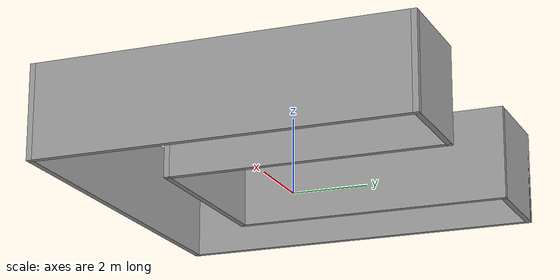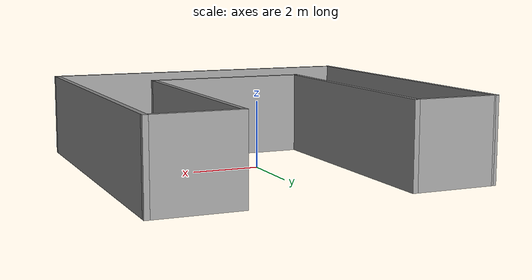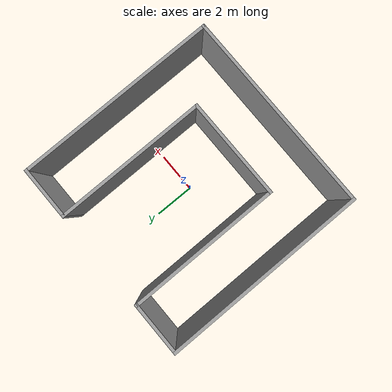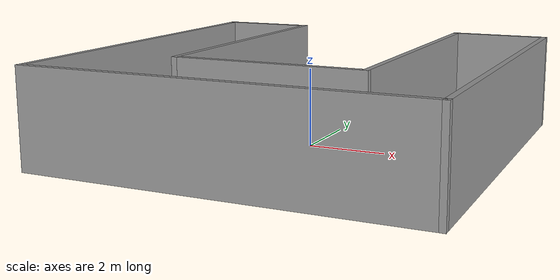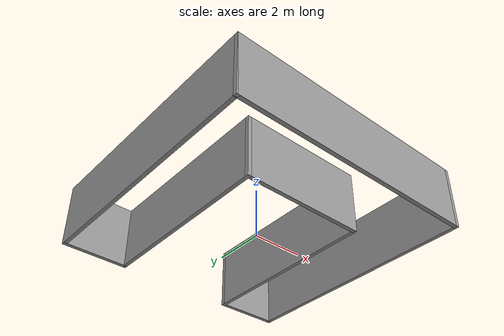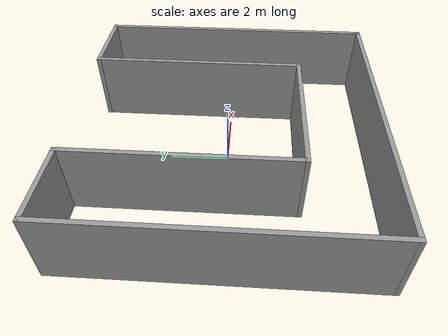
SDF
<?xml version='1.0'?>
<sdf version='1.6'>
  <model name='test_building'>
    <link name='Wall_0'>
      <pose frame=''>-4.92492 -0.009003 0 0 0 -1.57076</pose>
      <self_collide>0</self_collide>
      <kinematic>0</kinematic>
      <visual name='Wall_0_Visual'>
        <pose frame=''>0 0 1.25 0 -0 0</pose>
        <geometry>
          <box>
            <size>9.98209 0.15 2.5</size>
          </box>
        </geometry>
        <material>
          <script>
            <uri>file://media/materials/scripts/gazebo.material</uri>
            <name>Gazebo/Grey</name>
          </script>
          <ambient>1 1 1 1</ambient>
          <diffuse>0.7 0.7 0.7 1</diffuse>
          <specular>0.01 0.01 0.01 1</specular>
          <emissive>0 0 0 1</emissive>
        </material>
        <cast_shadows>1</cast_shadows>
        <transparency>0</transparency>
      </visual>
      <collision name='Wall_0_Collision'>
        <laser_retro>0</laser_retro>
        <max_contacts>10</max_contacts>
        <pose frame=''>0 0 1.25 0 -0 0</pose>
        <geometry>
          <box>
            <size>9.98209 0.15 2.5</size>
          </box>
        </geometry>
        <surface>
          <friction>
            <ode>
              <mu>1</mu>
              <mu2>1</mu2>
              <fdir1>0 0 0</fdir1>
              <slip1>0</slip1>
              <slip2>0</slip2>
            </ode>
            <torsional>
              <coefficient>1</coefficient>
              <patch_radius>0</patch_radius>
              <surface_radius>0</surface_radius>
              <use_patch_radius>1</use_patch_radius>
              <ode>
                <slip>0</slip>
              </ode>
            </torsional>
          </friction>
          <bounce>
            <restitution_coefficient>0</restitution_coefficient>
            <threshold>1e+06</threshold>
          </bounce>
          <contact>
            <collide_without_contact>0</collide_without_contact>
            <collide_without_contact_bitmask>1</collide_without_contact_bitmask>
            <collide_bitmask>1</collide_bitmask>
            <ode>
              <soft_cfm>0</soft_cfm>
              <soft_erp>0.2</soft_erp>
              <kp>1e+13</kp>
              <kd>1</kd>
              <max_vel>0.01</max_vel>
              <min_depth>0</min_depth>
            </ode>
            <bullet>
              <split_impulse>1</split_impulse>
              <split_impulse_penetration_threshold>-0.01</split_impulse_penetration_threshold>
              <soft_cfm>0</soft_cfm>
              <soft_erp>0.2</soft_erp>
              <kp>1e+13</kp>
              <kd>1</kd>
            </bullet>
          </contact>
        </surface>
      </collision>
    </link>
    <link name='Wall_1'>
      <pose frame=''>8.4e-05 -4.925 0 0 -0 1e-05</pose>
      <self_collide>0</self_collide>
      <kinematic>0</kinematic>
      <visual name='Wall_1_Visual'>
        <pose frame=''>0 0 1.25 0 -0 0</pose>
        <geometry>
          <box>
            <size>10 0.15 2.5</size>
          </box>
        </geometry>
        <material>
          <script>
            <uri>file://media/materials/scripts/gazebo.material</uri>
            <name>Gazebo/Grey</name>
          </script>
          <ambient>1 1 1 1</ambient>
          <diffuse>0.7 0.7 0.7 1</diffuse>
          <specular>0.01 0.01 0.01 1</specular>
          <emissive>0 0 0 1</emissive>
        </material>
        <cast_shadows>1</cast_shadows>
        <transparency>0</transparency>
      </visual>
      <collision name='Wall_1_Collision'>
        <laser_retro>0</laser_retro>
        <max_contacts>10</max_contacts>
        <pose frame=''>0 0 1.25 0 -0 0</pose>
        <geometry>
          <box>
            <size>10 0.15 2.5</size>
          </box>
        </geometry>
        <surface>
          <friction>
            <ode>
              <mu>1</mu>
              <mu2>1</mu2>
              <fdir1>0 0 0</fdir1>
              <slip1>0</slip1>
              <slip2>0</slip2>
            </ode>
            <torsional>
              <coefficient>1</coefficient>
              <patch_radius>0</patch_radius>
              <surface_radius>0</surface_radius>
              <use_patch_radius>1</use_patch_radius>
              <ode>
                <slip>0</slip>
              </ode>
            </torsional>
          </friction>
          <bounce>
            <restitution_coefficient>0</restitution_coefficient>
            <threshold>1e+06</threshold>
          </bounce>
          <contact>
            <collide_without_contact>0</collide_without_contact>
            <collide_without_contact_bitmask>1</collide_without_contact_bitmask>
            <collide_bitmask>1</collide_bitmask>
            <ode>
              <soft_cfm>0</soft_cfm>
              <soft_erp>0.2</soft_erp>
              <kp>1e+13</kp>
              <kd>1</kd>
              <max_vel>0.01</max_vel>
              <min_depth>0</min_depth>
            </ode>
            <bullet>
              <split_impulse>1</split_impulse>
              <split_impulse_penetration_threshold>-0.01</split_impulse_penetration_threshold>
              <soft_cfm>0</soft_cfm>
              <soft_erp>0.2</soft_erp>
              <kp>1e+13</kp>
              <kd>1</kd>
            </bullet>
          </contact>
        </surface>
      </collision>
    </link>
    <link name='Wall_2'>
      <pose frame=''>4.92492 4.4e-05 0 0 -0 1.5708</pose>
      <self_collide>0</self_collide>
      <kinematic>0</kinematic>
      <visual name='Wall_2_Visual'>
        <pose frame=''>0 0 1.25 0 -0 0</pose>
        <geometry>
          <box>
            <size>10 0.15 2.5</size>
          </box>
        </geometry>
        <material>
          <script>
            <uri>file://media/materials/scripts/gazebo.material</uri>
            <name>Gazebo/Grey</name>
          </script>
          <ambient>1 1 1 1</ambient>
          <diffuse>0.7 0.7 0.7 1</diffuse>
          <specular>0.01 0.01 0.01 1</specular>
          <emissive>0 0 0 1</emissive>
        </material>
        <cast_shadows>1</cast_shadows>
        <transparency>0</transparency>
      </visual>
      <collision name='Wall_2_Collision'>
        <laser_retro>0</laser_retro>
        <max_contacts>10</max_contacts>
        <pose frame=''>0 0 1.25 0 -0 0</pose>
        <geometry>
          <box>
            <size>10 0.15 2.5</size>
          </box>
        </geometry>
        <surface>
          <friction>
            <ode>
              <mu>1</mu>
              <mu2>1</mu2>
              <fdir1>0 0 0</fdir1>
              <slip1>0</slip1>
              <slip2>0</slip2>
            </ode>
            <torsional>
              <coefficient>1</coefficient>
              <patch_radius>0</patch_radius>
              <surface_radius>0</surface_radius>
              <use_patch_radius>1</use_patch_radius>
              <ode>
                <slip>0</slip>
              </ode>
            </torsional>
          </friction>
          <bounce>
            <restitution_coefficient>0</restitution_coefficient>
            <threshold>1e+06</threshold>
          </bounce>
          <contact>
            <collide_without_contact>0</collide_without_contact>
            <collide_without_contact_bitmask>1</collide_without_contact_bitmask>
            <collide_bitmask>1</collide_bitmask>
            <ode>
              <soft_cfm>0</soft_cfm>
              <soft_erp>0.2</soft_erp>
              <kp>1e+13</kp>
              <kd>1</kd>
              <max_vel>0.01</max_vel>
              <min_depth>0</min_depth>
            </ode>
            <bullet>
              <split_impulse>1</split_impulse>
              <split_impulse_penetration_threshold>-0.01</split_impulse_penetration_threshold>
              <soft_cfm>0</soft_cfm>
              <soft_erp>0.2</soft_erp>
              <kp>1e+13</kp>
              <kd>1</kd>
            </bullet>
          </contact>
        </surface>
      </collision>
    </link>
    <link name='Wall_3'>
      <pose frame=''>3.67492 4.92504 0 0 -0 3.14159</pose>
      <self_collide>0</self_collide>
      <kinematic>0</kinematic>
      <visual name='Wall_3_Visual'>
        <pose frame=''>0 0 1.25 0 -0 0</pose>
        <geometry>
          <box>
            <size>2.65 0.15 2.5</size>
          </box>
        </geometry>
        <material>
          <script>
            <uri>file://media/materials/scripts/gazebo.material</uri>
            <name>Gazebo/Grey</name>
          </script>
          <ambient>1 1 1 1</ambient>
          <diffuse>0.7 0.7 0.7 1</diffuse>
          <specular>0.01 0.01 0.01 1</specular>
          <emissive>0 0 0 1</emissive>
        </material>
        <cast_shadows>1</cast_shadows>
        <transparency>0</transparency>
      </visual>
      <collision name='Wall_3_Collision'>
        <laser_retro>0</laser_retro>
        <max_contacts>10</max_contacts>
        <pose frame=''>0 0 1.25 0 -0 0</pose>
        <geometry>
          <box>
            <size>2.65 0.15 2.5</size>
          </box>
        </geometry>
        <surface>
          <friction>
            <ode>
              <mu>1</mu>
              <mu2>1</mu2>
              <fdir1>0 0 0</fdir1>
              <slip1>0</slip1>
              <slip2>0</slip2>
            </ode>
            <torsional>
              <coefficient>1</coefficient>
              <patch_radius>0</patch_radius>
              <surface_radius>0</surface_radius>
              <use_patch_radius>1</use_patch_radius>
              <ode>
                <slip>0</slip>
              </ode>
            </torsional>
          </friction>
          <bounce>
            <restitution_coefficient>0</restitution_coefficient>
            <threshold>1e+06</threshold>
          </bounce>
          <contact>
            <collide_without_contact>0</collide_without_contact>
            <collide_without_contact_bitmask>1</collide_without_contact_bitmask>
            <collide_bitmask>1</collide_bitmask>
            <ode>
              <soft_cfm>0</soft_cfm>
              <soft_erp>0.2</soft_erp>
              <kp>1e+13</kp>
              <kd>1</kd>
              <max_vel>0.01</max_vel>
              <min_depth>0</min_depth>
            </ode>
            <bullet>
              <split_impulse>1</split_impulse>
              <split_impulse_penetration_threshold>-0.01</split_impulse_penetration_threshold>
              <soft_cfm>0</soft_cfm>
              <soft_erp>0.2</soft_erp>
              <kp>1e+13</kp>
              <kd>1</kd>
            </bullet>
          </contact>
        </surface>
      </collision>
    </link>
    <link name='Wall_4'>
      <pose frame=''>2.42492 1.25004 0 0 0 -1.5708</pose>
      <self_collide>0</self_collide>
      <kinematic>0</kinematic>
      <visual name='Wall_4_Visual'>
        <pose frame=''>0 0 1.25 0 -0 0</pose>
        <geometry>
          <box>
            <size>7.5 0.15 2.5</size>
          </box>
        </geometry>
        <material>
          <script>
            <uri>file://media/materials/scripts/gazebo.material</uri>
            <name>Gazebo/Grey</name>
          </script>
          <ambient>1 1 1 1</ambient>
          <diffuse>0.7 0.7 0.7 1</diffuse>
          <specular>0.01 0.01 0.01 1</specular>
          <emissive>0 0 0 1</emissive>
        </material>
        <cast_shadows>1</cast_shadows>
        <transparency>0</transparency>
      </visual>
      <collision name='Wall_4_Collision'>
        <laser_retro>0</laser_retro>
        <max_contacts>10</max_contacts>
        <pose frame=''>0 0 1.25 0 -0 0</pose>
        <geometry>
          <box>
            <size>7.5 0.15 2.5</size>
          </box>
        </geometry>
        <surface>
          <friction>
            <ode>
              <mu>1</mu>
              <mu2>1</mu2>
              <fdir1>0 0 0</fdir1>
              <slip1>0</slip1>
              <slip2>0</slip2>
            </ode>
            <torsional>
              <coefficient>1</coefficient>
              <patch_radius>0</patch_radius>
              <surface_radius>0</surface_radius>
              <use_patch_radius>1</use_patch_radius>
              <ode>
                <slip>0</slip>
              </ode>
            </torsional>
          </friction>
          <bounce>
            <restitution_coefficient>0</restitution_coefficient>
            <threshold>1e+06</threshold>
          </bounce>
          <contact>
            <collide_without_contact>0</collide_without_contact>
            <collide_without_contact_bitmask>1</collide_without_contact_bitmask>
            <collide_bitmask>1</collide_bitmask>
            <ode>
              <soft_cfm>0</soft_cfm>
              <soft_erp>0.2</soft_erp>
              <kp>1e+13</kp>
              <kd>1</kd>
              <max_vel>0.01</max_vel>
              <min_depth>0</min_depth>
            </ode>
            <bullet>
              <split_impulse>1</split_impulse>
              <split_impulse_penetration_threshold>-0.01</split_impulse_penetration_threshold>
              <soft_cfm>0</soft_cfm>
              <soft_erp>0.2</soft_erp>
              <kp>1e+13</kp>
              <kd>1</kd>
            </bullet>
          </contact>
        </surface>
      </collision>
    </link>
    <link name='Wall_5'>
      <pose frame=''>-8.2e-05 -2.42496 0 0 -0 3.14159</pose>
      <self_collide>0</self_collide>
      <kinematic>0</kinematic>
      <visual name='Wall_5_Visual'>
        <pose frame=''>0 0 1.25 0 -0 0</pose>
        <geometry>
          <box>
            <size>5 0.15 2.5</size>
          </box>
        </geometry>
        <material>
          <script>
            <uri>file://media/materials/scripts/gazebo.material</uri>
            <name>Gazebo/Grey</name>
          </script>
          <ambient>1 1 1 1</ambient>
          <diffuse>0.7 0.7 0.7 1</diffuse>
          <specular>0.01 0.01 0.01 1</specular>
          <emissive>0 0 0 1</emissive>
        </material>
        <cast_shadows>1</cast_shadows>
        <transparency>0</transparency>
      </visual>
      <collision name='Wall_5_Collision'>
        <laser_retro>0</laser_retro>
        <max_contacts>10</max_contacts>
        <pose frame=''>0 0 1.25 0 -0 0</pose>
        <geometry>
          <box>
            <size>5 0.15 2.5</size>
          </box>
        </geometry>
        <surface>
          <friction>
            <ode>
              <mu>1</mu>
              <mu2>1</mu2>
              <fdir1>0 0 0</fdir1>
              <slip1>0</slip1>
              <slip2>0</slip2>
            </ode>
            <torsional>
              <coefficient>1</coefficient>
              <patch_radius>0</patch_radius>
              <surface_radius>0</surface_radius>
              <use_patch_radius>1</use_patch_radius>
              <ode>
                <slip>0</slip>
              </ode>
            </torsional>
          </friction>
          <bounce>
            <restitution_coefficient>0</restitution_coefficient>
            <threshold>1e+06</threshold>
          </bounce>
          <contact>
            <collide_without_contact>0</collide_without_contact>
            <collide_without_contact_bitmask>1</collide_without_contact_bitmask>
            <collide_bitmask>1</collide_bitmask>
            <ode>
              <soft_cfm>0</soft_cfm>
              <soft_erp>0.2</soft_erp>
              <kp>1e+13</kp>
              <kd>1</kd>
              <max_vel>0.01</max_vel>
              <min_depth>0</min_depth>
            </ode>
            <bullet>
              <split_impulse>1</split_impulse>
              <split_impulse_penetration_threshold>-0.01</split_impulse_penetration_threshold>
              <soft_cfm>0</soft_cfm>
              <soft_erp>0.2</soft_erp>
              <kp>1e+13</kp>
              <kd>1</kd>
            </bullet>
          </contact>
        </surface>
      </collision>
    </link>
    <link name='Wall_6'>
      <pose frame=''>-2.42508 1.24104 0 0 -0 1.5708</pose>
      <self_collide>0</self_collide>
      <kinematic>0</kinematic>
      <visual name='Wall_6_Visual'>
        <pose frame=''>0 0 1.25 0 -0 0</pose>
        <geometry>
          <box>
            <size>7.482 0.15 2.5</size>
          </box>
        </geometry>
        <material>
          <script>
            <uri>file://media/materials/scripts/gazebo.material</uri>
            <name>Gazebo/Grey</name>
          </script>
          <ambient>1 1 1 1</ambient>
          <diffuse>0.7 0.7 0.7 1</diffuse>
          <specular>0.01 0.01 0.01 1</specular>
          <emissive>0 0 0 1</emissive>
        </material>
        <cast_shadows>1</cast_shadows>
        <transparency>0</transparency>
      </visual>
      <collision name='Wall_6_Collision'>
        <laser_retro>0</laser_retro>
        <max_contacts>10</max_contacts>
        <pose frame=''>0 0 1.25 0 -0 0</pose>
        <geometry>
          <box>
            <size>7.482 0.15 2.5</size>
          </box>
        </geometry>
        <surface>
          <friction>
            <ode>
              <mu>1</mu>
              <mu2>1</mu2>
              <fdir1>0 0 0</fdir1>
              <slip1>0</slip1>
              <slip2>0</slip2>
            </ode>
            <torsional>
              <coefficient>1</coefficient>
              <patch_radius>0</patch_radius>
              <surface_radius>0</surface_radius>
              <use_patch_radius>1</use_patch_radius>
              <ode>
                <slip>0</slip>
              </ode>
            </torsional>
          </friction>
          <bounce>
            <restitution_coefficient>0</restitution_coefficient>
            <threshold>1e+06</threshold>
          </bounce>
          <contact>
            <collide_without_contact>0</collide_without_contact>
            <collide_without_contact_bitmask>1</collide_without_contact_bitmask>
            <collide_bitmask>1</collide_bitmask>
            <ode>
              <soft_cfm>0</soft_cfm>
              <soft_erp>0.2</soft_erp>
              <kp>1e+13</kp>
              <kd>1</kd>
              <max_vel>0.01</max_vel>
              <min_depth>0</min_depth>
            </ode>
            <bullet>
              <split_impulse>1</split_impulse>
              <split_impulse_penetration_threshold>-0.01</split_impulse_penetration_threshold>
              <soft_cfm>0</soft_cfm>
              <soft_erp>0.2</soft_erp>
              <kp>1e+13</kp>
              <kd>1</kd>
            </bullet>
          </contact>
        </surface>
      </collision>
    </link>
    <link name='Wall_7'>
      <pose frame=''>-3.67508 4.90704 0 0 -0 3.14159</pose>
      <self_collide>0</self_collide>
      <kinematic>0</kinematic>
      <visual name='Wall_7_Visual'>
        <pose frame=''>0 0 1.25 0 -0 0</pose>
        <geometry>
          <box>
            <size>2.64967 0.15 2.5</size>
          </box>
        </geometry>
        <material>
          <script>
            <uri>file://media/materials/scripts/gazebo.material</uri>
            <name>Gazebo/Grey</name>
          </script>
          <ambient>1 1 1 1</ambient>
          <diffuse>0.7 0.7 0.7 1</diffuse>
          <specular>0.01 0.01 0.01 1</specular>
          <emissive>0 0 0 1</emissive>
        </material>
        <cast_shadows>1</cast_shadows>
        <transparency>0</transparency>
      </visual>
      <collision name='Wall_7_Collision'>
        <laser_retro>0</laser_retro>
        <max_contacts>10</max_contacts>
        <pose frame=''>0 0 1.25 0 -0 0</pose>
        <geometry>
          <box>
            <size>2.64967 0.15 2.5</size>
          </box>
        </geometry>
        <surface>
          <friction>
            <ode>
              <mu>1</mu>
              <mu2>1</mu2>
              <fdir1>0 0 0</fdir1>
              <slip1>0</slip1>
              <slip2>0</slip2>
            </ode>
            <torsional>
              <coefficient>1</coefficient>
              <patch_radius>0</patch_radius>
              <surface_radius>0</surface_radius>
              <use_patch_radius>1</use_patch_radius>
              <ode>
                <slip>0</slip>
              </ode>
            </torsional>
          </friction>
          <bounce>
            <restitution_coefficient>0</restitution_coefficient>
            <threshold>1e+06</threshold>
          </bounce>
          <contact>
            <collide_without_contact>0</collide_without_contact>
            <collide_without_contact_bitmask>1</collide_without_contact_bitmask>
            <collide_bitmask>1</collide_bitmask>
            <ode>
              <soft_cfm>0</soft_cfm>
              <soft_erp>0.2</soft_erp>
              <kp>1e+13</kp>
              <kd>1</kd>
              <max_vel>0.01</max_vel>
              <min_depth>0</min_depth>
            </ode>
            <bullet>
              <split_impulse>1</split_impulse>
              <split_impulse_penetration_threshold>-0.01</split_impulse_penetration_threshold>
              <soft_cfm>0</soft_cfm>
              <soft_erp>0.2</soft_erp>
              <kp>1e+13</kp>
              <kd>1</kd>
            </bullet>
          </contact>
        </surface>
      </collision>
    </link>
    <static>1</static>
    <allow_auto_disable>1</allow_auto_disable>
  </model>
</sdf>
